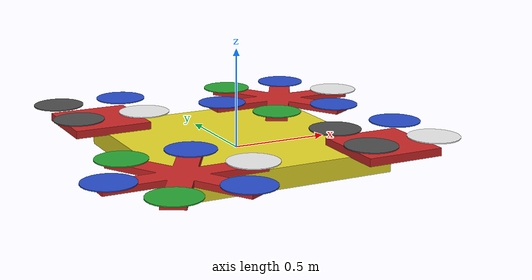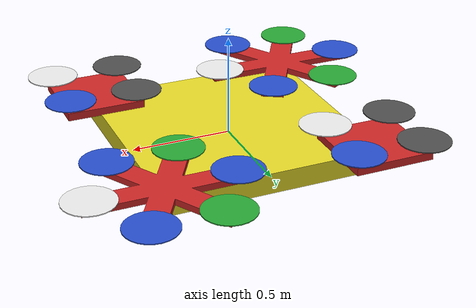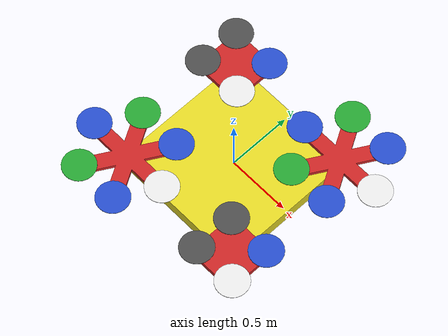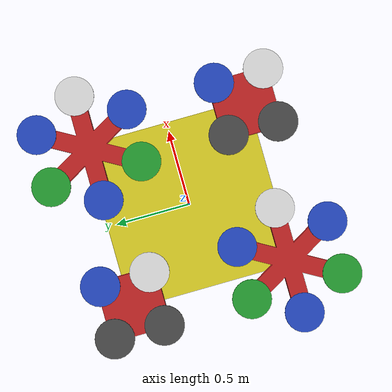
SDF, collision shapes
<sdf version='1.6'>
  <model name='quad_fl_parent'>
    <link name='base_link'>
      <pose frame=''>0 0 0 0 -0 0</pose>
      <inertial>
        <pose frame=''>0 0 0 0 -0 0</pose>
        <mass>0.75</mass>
        <inertia>
          <ixx>0.06906</ixx>
          <ixy>0</ixy>
          <ixz>0</ixz>
          <iyy>0.06906</iyy>
          <iyz>0</iyz>
          <izz>0.136899</izz>
        </inertia>
      </inertial>
      <collision name='base_link_inertia_collision'>
        <pose frame=''>0 0 0 0 -0 0</pose>
        <geometry>
          <box>
            <size>1.11 1.11 0.105</size>
          </box>
        </geometry>
        <surface>
          <contact>
            <ode>
              <min_depth>0.001</min_depth>
              <max_vel>0</max_vel>
            </ode>
          </contact>
          <friction>
            <ode/>
          </friction>
        </surface>
      </collision>
      <visual name='base_link_inertia_visual'>
        <pose frame=''>0 0 0 -1.570795 -0 1.570795</pose>
        <geometry>
          <mesh>
            <scale>0.003165 0.003165 0.003165</scale>
            <uri>model://quad_fl_parent/meshes/body_parent_new.stl</uri>
          </mesh>
        </geometry>
        <material>
          <script>
            <name>Gazebo/Yellow</name>
            <uri>file://media/materials/scripts/gazebo.material</uri>
          </script>
        </material>
      </visual>
      <gravity>1</gravity>
      <velocity_decay/>
    </link>

    <link name='/imu_link'>
      <pose frame=''>0 0 0 0 -0 0</pose>
      <inertial>
          <pose frame=''>0 0 0 0 -0 0</pose>
          <mass>0.015</mass>
          <inertia>
              <ixx>1e-05</ixx>
              <ixy>0</ixy>
              <ixz>0</ixz>
              <iyy>1e-05</iyy>
              <iyz>0</iyz>
              <izz>1e-05</izz>
          </inertia>
      </inertial>
    </link>
    <joint name='/imu_joint' type='revolute'>
      <child>/imu_link</child>
      <parent>base_link</parent>
      <axis>
          <xyz>1 0 0</xyz>
          <limit>
              <lower>0</lower>
              <upper>0</upper>
              <effort>0</effort>
              <velocity>0</velocity>
          </limit>
          <dynamics>
              <spring_reference>0</spring_reference>
              <spring_stiffness>0</spring_stiffness>
          </dynamics>
          <use_parent_model_frame>1</use_parent_model_frame>
      </axis>
    </joint>

    <static>0</static>

     <include>
      <uri>model://hex_fl_rr</uri>
      <pose frame=''>-0.525 -0.525 0.07 0 -0 0</pose>
    </include>
    <joint name="hex_fl_rr_link" type="fixed">
      <parent>base_link</parent>
      <child>hex_fl_rr::base_link</child>
    </joint>

    <include>
      <uri>model://quad_fl_rl</uri>
      <pose frame=''>-0.525 0.525 0.07 0 -0 0</pose>
    </include>
    <joint name="quad_fl_rl_link" type="fixed">
      <parent>base_link</parent>
      <child>quad_fl_rl::base_link</child>
    </joint>

    <include>
      <uri>model://quad_fl_fr</uri>
      <pose frame=''>0.525 -0.525 0.07 0 -0 0</pose>
    </include>
    <joint name="quad_fl_fr_link" type="fixed">
      <parent>base_link</parent>
      <child>quad_fl_fr::base_link</child>
    </joint>

    <include>
      <uri>model://hex_fl_fl</uri>
      <pose frame=''>0.525 0.525 0.07 0 -0 0</pose>
    </include>
    <joint name="hex_fl_fl_link" type="fixed">
      <parent>base_link</parent>
      <child>hex_fl_fl::base_link</child>
    </joint>

    <plugin name='gps_plugin' filename='libgazebo_gps_plugin.so'>
      <robotNamespace>quad_fl_parent</robotNamespace>
      <gpsNoise>1</gpsNoise>
    </plugin>
    <plugin name='magnetometer_plugin' filename='libgazebo_magnetometer_plugin.so'>
      <robotNamespace>quad_fl_parent</robotNamespace>
      <pubRate>20</pubRate>
      <noiseDensity>0.0004</noiseDensity>
      <randomWalk>6.4e-06</randomWalk>
      <biasCorrelationTime>600</biasCorrelationTime>
      <magTopic>/mag</magTopic>
    </plugin>
    <plugin name='barometer_plugin' filename='libgazebo_barometer_plugin.so'>
      <robotNamespace>quad_fl_parent</robotNamespace>
      <pubRate>10</pubRate>
      <baroTopic>/baro</baroTopic>
    </plugin>
    <plugin name='mavlink_interface' filename='libgazebo_mavlink_interface.so'>
      <robotNamespace>quad_fl_parent</robotNamespace>
      <imuSubTopic>/imu</imuSubTopic>
      <gpsSubTopic>/gps</gpsSubTopic>
      <magSubTopic>/mag</magSubTopic>
      <baroSubTopic>/baro</baroSubTopic>
      <mavlink_addr>INADDR_ANY</mavlink_addr>
      <mavlink_udp_port>14071</mavlink_udp_port>
      <mavlink_tcp_port>4571</mavlink_tcp_port>
      <serialEnabled>0</serialEnabled>
      <serialDevice>/dev/ttyACM0</serialDevice>
      <baudRate>921600</baudRate>
      <qgc_addr>INADDR_ANY</qgc_addr>
      <qgc_udp_port>14561</qgc_udp_port>
      <sdk_addr>INADDR_ANY</sdk_addr>
      <sdk_udp_port>13661</sdk_udp_port>
      <hil_mode>0</hil_mode>
      <hil_state_level>0</hil_state_level>
      <vehicle_is_tailsitter>0</vehicle_is_tailsitter>
      <send_vision_estimation>1</send_vision_estimation>
      <send_odometry>0</send_odometry>
      <enable_lockstep>1</enable_lockstep>
      <use_tcp>1</use_tcp>
      <motorSpeedCommandPubTopic>/gazebo/command/motor_speed</motorSpeedCommandPubTopic>
      <control_channels>
        <channel name='rotor1'>
          <input_index>0</input_index>
          <input_offset>0</input_offset>
          <input_scaling>1000</input_scaling>
          <zero_position_disarmed>0</zero_position_disarmed>
          <zero_position_armed>100</zero_position_armed>
          <joint_control_type>velocity</joint_control_type>
        </channel>
        <channel name='rotor2'>
          <input_index>1</input_index>
          <input_offset>0</input_offset>
          <input_scaling>1000</input_scaling>
          <zero_position_disarmed>0</zero_position_disarmed>
          <zero_position_armed>100</zero_position_armed>
          <joint_control_type>velocity</joint_control_type>
        </channel>
        <channel name='rotor3'>
          <input_index>2</input_index>
          <input_offset>0</input_offset>
          <input_scaling>1000</input_scaling>
          <zero_position_disarmed>0</zero_position_disarmed>
          <zero_position_armed>100</zero_position_armed>
          <joint_control_type>velocity</joint_control_type>
        </channel>
        <channel name='rotor4'>
          <input_index>3</input_index>
          <input_offset>0</input_offset>
          <input_scaling>1000</input_scaling>
          <zero_position_disarmed>0</zero_position_disarmed>
          <zero_position_armed>100</zero_position_armed>
          <joint_control_type>velocity</joint_control_type>
        </channel>
      </control_channels>
    </plugin>
    <static>0</static>
    <plugin name='rotors_gazebo_imu_plugin' filename='libgazebo_imu_plugin.so'>
      <robotNamespace>quad_fl_parent</robotNamespace>
      <linkName>/imu_link</linkName>
      <imuTopic>/imu</imuTopic>
      <gyroscopeNoiseDensity>0.0003394</gyroscopeNoiseDensity>
      <gyroscopeRandomWalk>3.8785e-05</gyroscopeRandomWalk>
      <gyroscopeBiasCorrelationTime>1000.0</gyroscopeBiasCorrelationTime>
      <gyroscopeTurnOnBiasSigma>0.0087</gyroscopeTurnOnBiasSigma>
      <accelerometerNoiseDensity>0.004</accelerometerNoiseDensity>
      <accelerometerRandomWalk>0.006</accelerometerRandomWalk>
      <accelerometerBiasCorrelationTime>300.0</accelerometerBiasCorrelationTime>
      <accelerometerTurnOnBiasSigma>0.196</accelerometerTurnOnBiasSigma>
    </plugin>

  </model>

</sdf>

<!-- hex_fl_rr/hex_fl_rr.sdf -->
<sdf version='1.6'>
  <model name='hex_fl_rr'>
    <link name='base_link'>
      <pose frame=''>0 0 0 0 -0 0</pose>
      <inertial>
        <pose frame=''>0 0 0 0 -0 0</pose>
        <mass>2.0</mass>
        <inertia>
          <ixx>0.0818</ixx>
          <ixy>0</ixy>
          <ixz>0</ixz>
          <iyy>0.0818</iyy>
          <iyz>0</iyz>
          <izz>0.1633</izz>
        </inertia>
      </inertial>
      <collision name='base_link_inertia_collision'>
        <pose frame=''>0 0 0.015 -1.570795 -0 1.570795</pose>
        <geometry>
          <mesh>
            <scale>0.001055 0.001055 0.001055</scale>
            <uri>model://hex_fl_rr/meshes/hex_collision.stl</uri>
          </mesh>
        </geometry>
        <surface>
          <contact>
            <ode>
              <min_depth>0.001</min_depth>
              <max_vel>0</max_vel>
            </ode>
          </contact>
          <friction>
            <ode/>
          </friction>
        </surface>
      </collision>
      <visual name='base_link_inertia_visual'>
        <pose frame=''>0 0 0 -1.570795 -0 1.570795</pose>
        <geometry>
          <mesh>
            <scale>0.001055 0.001055 0.001055</scale>
            <uri>model://hex_fl_rr/meshes/hex_frame.stl</uri>
          </mesh>
        </geometry>
        <material>
          <script>
            <name>Gazebo/Red</name>
            <uri>file://media/materials/scripts/gazebo.material</uri>
          </script>
        </material>
      </visual>
      <gravity>1</gravity>
      <velocity_decay/>
    </link>
    <link name='/imu_link'>
      <pose frame=''>0 0 0 0 -0 0</pose>
      <inertial>
        <pose frame=''>0 0 0 0 -0 0</pose>
        <mass>0.015</mass>
        <inertia>
          <ixx>1e-05</ixx>
          <ixy>0</ixy>
          <ixz>0</ixz>
          <iyy>1e-05</iyy>
          <iyz>0</iyz>
          <izz>1e-05</izz>
        </inertia>
      </inertial>
    </link>
    <joint name='/imu_joint' type='revolute'>
      <child>/imu_link</child>
      <parent>base_link</parent>
      <axis>
        <xyz>1 0 0</xyz>
        <limit>
          <lower>0</lower>
          <upper>0</upper>
          <effort>0</effort>
          <velocity>0</velocity>
        </limit>
        <dynamics>
          <spring_reference>0</spring_reference>
          <spring_stiffness>0</spring_stiffness>
        </dynamics>
        <use_parent_model_frame>1</use_parent_model_frame>
      </axis>
    </joint>

    <link name='rotor_3'>
      <pose frame=''>0.175 -0.30311 0.022 0 -0 0</pose>
      <inertial>
        <pose frame=''>0 0 0 0 -0 0</pose>
        <mass>0.005</mass>
        <inertia>
          <ixx>9.75e-07</ixx>
          <ixy>0</ixy>
          <ixz>0</ixz>
          <iyy>0.000273104</iyy>
          <iyz>0</iyz>
          <izz>0.000274004</izz>
        </inertia>
      </inertial>
      <collision name='rotor_3_collision'>
        <pose frame=''>0 0 0 0 -0 0</pose>
        <geometry>
          <cylinder>
            <length>0.005</length>
            <radius>0.128</radius>
          </cylinder>
        </geometry>
        <surface>
          <contact>
            <ode/>
          </contact>
          <friction>
            <ode/>
          </friction>
        </surface>
      </collision>
      <visual name='rotor_3_visual'>
        <pose frame=''>0 0 0 0 -0 0</pose>
        <geometry>
          <mesh>
            <scale>1 1 1</scale>
            <uri>model://rotors_description/meshes/iris_prop_ccw.dae</uri>
          </mesh>
        </geometry>
        <material>
          <script>
            <name>Gazebo/Blue</name>
            <uri>file://media/materials/scripts/gazebo.material</uri>
          </script>
        </material>
      </visual>
      <gravity>1</gravity>
      <velocity_decay/>
    </link>
    <joint name='rotor_3_joint' type='revolute'>
      <child>rotor_3</child>
      <parent>base_link</parent>
      <axis>
        <xyz>0 0 1</xyz>
        <limit>
          <lower>-1e+16</lower>
          <upper>1e+16</upper>
        </limit>
        <dynamics>
          <spring_reference>0</spring_reference>
          <spring_stiffness>0</spring_stiffness>
        </dynamics>
        <use_parent_model_frame>1</use_parent_model_frame>
      </axis>
    </joint>
    <link name='rotor_4'>
      <pose frame=''>0.175 0.30311 0.022 0 -0 0</pose>
      <inertial>
        <pose frame=''>0 0 0 0 -0 0</pose>
        <mass>0.005</mass>
        <inertia>
          <ixx>9.75e-07</ixx>
          <ixy>0</ixy>
          <ixz>0</ixz>
          <iyy>0.000273104</iyy>
          <iyz>0</iyz>
          <izz>0.000274004</izz>
        </inertia>
      </inertial>
      <collision name='rotor_4_collision'>
        <pose frame=''>0 0 0 0 -0 0</pose>
        <geometry>
          <cylinder>
            <length>0.005</length>
            <radius>0.128</radius>
          </cylinder>
        </geometry>
        <surface>
          <contact>
            <ode/>
          </contact>
          <friction>
            <ode/>
          </friction>
        </surface>
      </collision>
      <visual name='rotor_4_visual'>
        <pose frame=''>0 0 0 0 -0 0</pose>
        <geometry>
          <mesh>
            <scale>1 1 1</scale>
            <uri>model://rotors_description/meshes/iris_prop_ccw.dae</uri>
          </mesh>
        </geometry>
        <material>
          <script>
            <name>Gazebo/Blue</name>
            <uri>file://media/materials/scripts/gazebo.material</uri>
          </script>
        </material>
      </visual>
      <gravity>1</gravity>
      <velocity_decay/>
    </link>
    <joint name='rotor_4_joint' type='revolute'>
      <child>rotor_4</child>
      <parent>base_link</parent>
      <axis>
        <xyz>0 0 1</xyz>
        <limit>
          <lower>-1e+16</lower>
          <upper>1e+16</upper>
        </limit>
        <dynamics>
          <spring_reference>0</spring_reference>
          <spring_stiffness>0</spring_stiffness>
        </dynamics>
        <use_parent_model_frame>1</use_parent_model_frame>
      </axis>
    </joint>
    <link name='rotor_1'>
      <pose frame=''>-0.35 0 0.022 0 -0 0</pose>
      <inertial>
        <pose frame=''>0 0 0 0 -0 0</pose>
        <mass>0.005</mass>
        <inertia>
          <ixx>9.75e-07</ixx>
          <ixy>0</ixy>
          <ixz>0</ixz>
          <iyy>0.000273104</iyy>
          <iyz>0</iyz>
          <izz>0.000274004</izz>
        </inertia>
      </inertial>
      <collision name='rotor_1_collision'>
        <pose frame=''>0 0 0 0 -0 0</pose>
        <geometry>
          <cylinder>
            <length>0.005</length>
            <radius>0.128</radius>
          </cylinder>
        </geometry>
        <surface>
          <contact>
            <ode/>
          </contact>
          <friction>
            <ode/>
          </friction>
        </surface>
      </collision>
      <visual name='rotor_1_visual'>
        <pose frame=''>0 0 0 0 -0 0</pose>
        <geometry>
          <mesh>
            <scale>1 1 1</scale>
            <uri>model://rotors_description/meshes/iris_prop_ccw.dae</uri>
          </mesh>
        </geometry>
        <material>
          <script>
            <name>Gazebo/Blue</name>
            <uri>file://media/materials/scripts/gazebo.material</uri>
          </script>
        </material>
      </visual>
      <gravity>1</gravity>
      <velocity_decay/>
    </link>
    <joint name='rotor_1_joint' type='revolute'>
      <child>rotor_1</child>
      <parent>base_link</parent>
      <axis>
        <xyz>0 0 1</xyz>
        <limit>
          <lower>-1e+16</lower>
          <upper>1e+16</upper>
        </limit>
        <dynamics>
          <spring_reference>0</spring_reference>
          <spring_stiffness>0</spring_stiffness>
        </dynamics>
        <use_parent_model_frame>1</use_parent_model_frame>
      </axis>
    </joint>
    <link name='rotor_5'>
      <pose frame=''>-0.175 -0.30311 0.022 0 -0 0</pose>
      <inertial>
        <pose frame=''>0 0 0 0 -0 0</pose>
        <mass>0.005</mass>
        <inertia>
          <ixx>9.75e-07</ixx>
          <ixy>0</ixy>
          <ixz>0</ixz>
          <iyy>0.000273104</iyy>
          <iyz>0</iyz>
          <izz>0.000274004</izz>
        </inertia>
      </inertial>
      <collision name='rotor_5_collision'>
        <pose frame=''>0 0 0 0 -0 0</pose>
        <geometry>
          <cylinder>
            <length>0.005</length>
            <radius>0.128</radius>
          </cylinder>
        </geometry>
        <surface>
          <contact>
            <ode/>
          </contact>
          <friction>
            <ode/>
          </friction>
        </surface>
      </collision>
      <visual name='rotor_5_visual'>
        <pose frame=''>0 0 0 0 -0 0</pose>
        <geometry>
          <mesh>
            <scale>1 1 1</scale>
            <uri>model://rotors_description/meshes/iris_prop_cw.dae</uri>
          </mesh>
        </geometry>
        <material>
          <script>
            <name>Gazebo/Green</name>
            <uri>file://media/materials/scripts/gazebo.material</uri>
          </script>
        </material>
      </visual>
      <gravity>1</gravity>
      <velocity_decay/>
    </link>
    <joint name='rotor_5_joint' type='revolute'>
      <child>rotor_5</child>
      <parent>base_link</parent>
      <axis>
        <xyz>0 0 1</xyz>
        <limit>
          <lower>-1e+16</lower>
          <upper>1e+16</upper>
        </limit>
        <dynamics>
          <spring_reference>0</spring_reference>
          <spring_stiffness>0</spring_stiffness>
        </dynamics>
        <use_parent_model_frame>1</use_parent_model_frame>
      </axis>
    </joint>
    <link name='rotor_2'>
      <pose frame=''>-0.175 0.30311 0.022 0 -0 0</pose>
      <inertial>
        <pose frame=''>0 0 0 0 -0 0</pose>
        <mass>0.005</mass>
        <inertia>
          <ixx>9.75e-07</ixx>
          <ixy>0</ixy>
          <ixz>0</ixz>
          <iyy>0.000273104</iyy>
          <iyz>0</iyz>
          <izz>0.000274004</izz>
        </inertia>
      </inertial>
      <collision name='rotor_2_collision'>
        <pose frame=''>0 0 0 0 -0 0</pose>
        <geometry>
          <cylinder>
            <length>0.005</length>
            <radius>0.128</radius>
          </cylinder>
        </geometry>
        <surface>
          <contact>
            <ode/>
          </contact>
          <friction>
            <ode/>
          </friction>
        </surface>
      </collision>
      <visual name='rotor_2_visual'>
        <pose frame=''>0 0 0 0 -0 0</pose>
        <geometry>
          <mesh>
            <scale>1 1 1</scale>
            <uri>model://rotors_description/meshes/iris_prop_cw.dae</uri>
          </mesh>
        </geometry>
        <material>
          <script>
            <name>Gazebo/Green</name>
            <uri>file://media/materials/scripts/gazebo.material</uri>
          </script>
        </material>
      </visual>
      <gravity>1</gravity>
      <velocity_decay/>
    </link>
    <joint name='rotor_2_joint' type='revolute'>
      <child>rotor_2</child>
      <parent>base_link</parent>
      <axis>
        <xyz>0 0 1</xyz>
        <limit>
          <lower>-1e+16</lower>
          <upper>1e+16</upper>
        </limit>
        <dynamics>
          <spring_reference>0</spring_reference>
          <spring_stiffness>0</spring_stiffness>
        </dynamics>
        <use_parent_model_frame>1</use_parent_model_frame>
      </axis>
    </joint>
    <link name='rotor_0'>
      <pose frame=''>0.35 0 0.022 0 -0 0</pose>
      <inertial>
        <pose frame=''>0 0 0 0 -0 0</pose>
        <mass>0.005</mass>
        <inertia>
          <ixx>9.75e-07</ixx>
          <ixy>0</ixy>
          <ixz>0</ixz>
          <iyy>0.000273104</iyy>
          <iyz>0</iyz>
          <izz>0.000274004</izz>
        </inertia>
      </inertial>
      <collision name='rotor_0_collision'>
        <pose frame=''>0 0 0 0 -0 0</pose>
        <geometry>
          <cylinder>
            <length>0.005</length>
            <radius>0.128</radius>
          </cylinder>
        </geometry>
        <surface>
          <contact>
            <ode/>
          </contact>
          <friction>
            <ode/>
          </friction>
        </surface>
      </collision>
      <visual name='rotor_0_visual'>
        <pose frame=''>0 0 0 0 -0 0</pose>
        <geometry>
          <mesh>
            <scale>1 1 1</scale>
            <uri>model://rotors_description/meshes/iris_prop_cw.dae</uri>
          </mesh>
        </geometry>
        <material>
          <script>
            <name>Gazebo/White</name>
            <uri>file://media/materials/scripts/gazebo.material</uri>
          </script>
        </material>
      </visual>
      <gravity>1</gravity>
      <velocity_decay/>
    </link>
    <joint name='rotor_0_joint' type='revolute'>
      <child>rotor_0</child>
      <parent>base_link</parent>
      <axis>
        <xyz>0 0 1</xyz>
        <limit>
          <lower>-1e+16</lower>
          <upper>1e+16</upper>
        </limit>
        <dynamics>
          <spring_reference>0</spring_reference>
          <spring_stiffness>0</spring_stiffness>
        </dynamics>
        <use_parent_model_frame>1</use_parent_model_frame>
      </axis>
    </joint>

    <plugin name='rosbag' filename='libgazebo_multirotor_base_plugin.so'>
      <robotNamespace>hex_fl_rr</robotNamespace>
      <linkName>base_link</linkName>
      <rotorVelocitySlowdownSim>10</rotorVelocitySlowdownSim>
    </plugin>
    <plugin name='front_motor_model' filename='libgazebo_motor_model.so'>
      <robotNamespace>hex_fl_rr</robotNamespace>
      <jointName>rotor_0_joint</jointName>
      <linkName>rotor_0</linkName>
      <turningDirection>cw</turningDirection>
      <timeConstantUp>0.0125</timeConstantUp>
      <timeConstantDown>0.025</timeConstantDown>
      <maxRotVelocity>1100</maxRotVelocity>
      <motorConstant>8.54858e-06</motorConstant>
      <momentConstant>0.06</momentConstant>
      <commandSubTopic>/gazebo/command/motor_speed</commandSubTopic>
      <motorNumber>0</motorNumber>
      <rotorDragCoefficient>0.000175</rotorDragCoefficient>
      <rollingMomentCoefficient>1e-06</rollingMomentCoefficient>
      <motorSpeedPubTopic>/motor_speed/0</motorSpeedPubTopic>
      <rotorVelocitySlowdownSim>10</rotorVelocitySlowdownSim>
    </plugin>
    <plugin name='back_motor_model' filename='libgazebo_motor_model.so'>
      <robotNamespace>hex_fl_rr</robotNamespace>
      <jointName>rotor_1_joint</jointName>
      <linkName>rotor_1</linkName>
      <turningDirection>ccw</turningDirection>
      <timeConstantUp>0.0125</timeConstantUp>
      <timeConstantDown>0.025</timeConstantDown>
      <maxRotVelocity>1100</maxRotVelocity>
      <motorConstant>8.54858e-06</motorConstant>
      <momentConstant>0.06</momentConstant>
      <commandSubTopic>/gazebo/command/motor_speed</commandSubTopic>
      <motorNumber>1</motorNumber>
      <rotorDragCoefficient>0.000175</rotorDragCoefficient>
      <rollingMomentCoefficient>1e-06</rollingMomentCoefficient>
      <motorSpeedPubTopic>/motor_speed/1</motorSpeedPubTopic>
      <rotorVelocitySlowdownSim>10</rotorVelocitySlowdownSim>
    </plugin>
    <plugin name='back_left_motor_model' filename='libgazebo_motor_model.so'>
      <robotNamespace>hex_fl_rr</robotNamespace>
      <jointName>rotor_2_joint</jointName>
      <linkName>rotor_2</linkName>
      <turningDirection>cw</turningDirection>
      <timeConstantUp>0.0125</timeConstantUp>
      <timeConstantDown>0.025</timeConstantDown>
      <maxRotVelocity>1100</maxRotVelocity>
      <motorConstant>8.54858e-06</motorConstant>
      <momentConstant>0.06</momentConstant>
      <commandSubTopic>/gazebo/command/motor_speed</commandSubTopic>
      <motorNumber>2</motorNumber>
      <rotorDragCoefficient>0.000175</rotorDragCoefficient>
      <rollingMomentCoefficient>1e-06</rollingMomentCoefficient>
      <motorSpeedPubTopic>/motor_speed/2</motorSpeedPubTopic>
      <rotorVelocitySlowdownSim>10</rotorVelocitySlowdownSim>
    </plugin>
    <plugin name='top_right_motor_model' filename='libgazebo_motor_model.so'>
      <robotNamespace>hex_fl_rr</robotNamespace>
      <jointName>rotor_3_joint</jointName>
      <linkName>rotor_3</linkName>
      <turningDirection>ccw</turningDirection>
      <timeConstantUp>0.0125</timeConstantUp>
      <timeConstantDown>0.025</timeConstantDown>
      <maxRotVelocity>1100</maxRotVelocity>
      <motorConstant>8.54858e-06</motorConstant>
      <momentConstant>0.06</momentConstant>
      <commandSubTopic>/gazebo/command/motor_speed</commandSubTopic>
      <motorNumber>3</motorNumber>
      <rotorDragCoefficient>0.000175</rotorDragCoefficient>
      <rollingMomentCoefficient>1e-06</rollingMomentCoefficient>
      <motorSpeedPubTopic>/motor_speed/3</motorSpeedPubTopic>
      <rotorVelocitySlowdownSim>10</rotorVelocitySlowdownSim>
    </plugin>
    <plugin name='top_left_motor_model' filename='libgazebo_motor_model.so'>
      <robotNamespace>hex_fl_rr</robotNamespace>
      <jointName>rotor_4_joint</jointName>
      <linkName>rotor_4</linkName>
      <turningDirection>ccw</turningDirection>
      <timeConstantUp>0.0125</timeConstantUp>
      <timeConstantDown>0.025</timeConstantDown>
      <maxRotVelocity>1100</maxRotVelocity>
      <motorConstant>8.54858e-06</motorConstant>
      <momentConstant>0.06</momentConstant>
      <commandSubTopic>/gazebo/command/motor_speed</commandSubTopic>
      <motorNumber>4</motorNumber>
      <rotorDragCoefficient>0.000175</rotorDragCoefficient>
      <rollingMomentCoefficient>1e-06</rollingMomentCoefficient>
      <motorSpeedPubTopic>/motor_speed/4</motorSpeedPubTopic>
      <rotorVelocitySlowdownSim>10</rotorVelocitySlowdownSim>
    </plugin>
    <plugin name='back_right_motor_model' filename='libgazebo_motor_model.so'>
      <robotNamespace>hex_fl_rr</robotNamespace>
      <jointName>rotor_5_joint</jointName>
      <linkName>rotor_5</linkName>
      <turningDirection>cw</turningDirection>
      <timeConstantUp>0.0125</timeConstantUp>
      <timeConstantDown>0.025</timeConstantDown>
      <maxRotVelocity>1100</maxRotVelocity>
      <motorConstant>8.54858e-06</motorConstant>
      <momentConstant>0.06</momentConstant>
      <commandSubTopic>/gazebo/command/motor_speed</commandSubTopic>
      <motorNumber>5</motorNumber>
      <rotorDragCoefficient>0.000175</rotorDragCoefficient>
      <rollingMomentCoefficient>1e-06</rollingMomentCoefficient>
      <motorSpeedPubTopic>/motor_speed/5</motorSpeedPubTopic>
      <rotorVelocitySlowdownSim>10</rotorVelocitySlowdownSim>
    </plugin>

    <plugin name='gps_plugin' filename='libgazebo_gps_plugin.so'>
      <robotNamespace>hex_fl_rr</robotNamespace>
      <gpsNoise>1</gpsNoise>
    </plugin>
    <plugin name='magnetometer_plugin' filename='libgazebo_magnetometer_plugin.so'>
      <robotNamespace>hex_fl_rr</robotNamespace>
      <pubRate>20</pubRate>
      <noiseDensity>0.0004</noiseDensity>
      <randomWalk>6.4e-06</randomWalk>
      <biasCorrelationTime>600</biasCorrelationTime>
      <magTopic>/mag</magTopic>
    </plugin>
    <plugin name='barometer_plugin' filename='libgazebo_barometer_plugin.so'>
      <robotNamespace>hex_fl_rr</robotNamespace>
      <pubRate>10</pubRate>
      <baroTopic>/baro</baroTopic>
    </plugin>
    <plugin name='mavlink_interface' filename='libgazebo_mavlink_interface.so'>
      <robotNamespace>hex_fl_rr</robotNamespace>
      <imuSubTopic>/imu</imuSubTopic>
      <gpsSubTopic>/gps</gpsSubTopic>
      <magSubTopic>/mag</magSubTopic>
      <baroSubTopic>/baro</baroSubTopic>
      <mavlink_addr>INADDR_ANY</mavlink_addr>
      <mavlink_udp_port>14075</mavlink_udp_port>
      <mavlink_tcp_port>4575</mavlink_tcp_port>
      <serialEnabled>0</serialEnabled>
      <serialDevice>/dev/ttyACM0</serialDevice>
      <baudRate>921600</baudRate>
      <qgc_addr>INADDR_ANY</qgc_addr>
      <qgc_udp_port>14565</qgc_udp_port>
      <sdk_addr>INADDR_ANY</sdk_addr>
      <sdk_udp_port>13665</sdk_udp_port>
      <hil_mode>0</hil_mode>
      <hil_state_level>0</hil_state_level>
      <vehicle_is_tailsitter>0</vehicle_is_tailsitter>
      <send_vision_estimation>1</send_vision_estimation>
      <send_odometry>0</send_odometry>
      <enable_lockstep>1</enable_lockstep>
      <use_tcp>1</use_tcp>
      <motorSpeedCommandPubTopic>/gazebo/command/motor_speed</motorSpeedCommandPubTopic>
      <control_channels>
        <channel name='rotor0'>
          <input_index>0</input_index>
          <input_offset>0</input_offset>
          <input_scaling>1000</input_scaling>
          <zero_position_disarmed>0</zero_position_disarmed>
          <zero_position_armed>100</zero_position_armed>
          <joint_control_type>velocity</joint_control_type>
        </channel>
        <channel name='rotor1'>
          <input_index>1</input_index>
          <input_offset>0</input_offset>
          <input_scaling>1000</input_scaling>
          <zero_position_disarmed>0</zero_position_disarmed>
          <zero_position_armed>100</zero_position_armed>
          <joint_control_type>velocity</joint_control_type>
        </channel>
        <channel name='rotor2'>
          <input_index>2</input_index>
          <input_offset>0</input_offset>
          <input_scaling>1000</input_scaling>
          <zero_position_disarmed>0</zero_position_disarmed>
          <zero_position_armed>100</zero_position_armed>
          <joint_control_type>velocity</joint_control_type>
        </channel>
        <channel name='rotor3'>
          <input_index>3</input_index>
          <input_offset>0</input_offset>
          <input_scaling>1000</input_scaling>
          <zero_position_disarmed>0</zero_position_disarmed>
          <zero_position_armed>100</zero_position_armed>
          <joint_control_type>velocity</joint_control_type>
        </channel>
        <channel name='rotor4'>
          <input_index>4</input_index>
          <input_offset>0</input_offset>
          <input_scaling>1000</input_scaling>
          <zero_position_disarmed>0</zero_position_disarmed>
          <zero_position_armed>100</zero_position_armed>
          <joint_control_type>velocity</joint_control_type>
        </channel>
        <channel name='rotor5'>
          <input_index>5</input_index>
          <input_offset>0</input_offset>
          <input_scaling>1000</input_scaling>
          <zero_position_disarmed>0</zero_position_disarmed>
          <zero_position_armed>100</zero_position_armed>
          <joint_control_type>velocity</joint_control_type>
        </channel>
      </control_channels>
    </plugin>
    <static>0</static>
    <plugin name='rotors_gazebo_imu_plugin' filename='libgazebo_imu_plugin.so'>
      <robotNamespace>hex_fl_rr</robotNamespace>
      <linkName>/imu_link</linkName>
      <imuTopic>/imu</imuTopic>
      <gyroscopeNoiseDensity>0.0003394</gyroscopeNoiseDensity>
      <gyroscopeRandomWalk>3.8785e-05</gyroscopeRandomWalk>
      <gyroscopeBiasCorrelationTime>1000.0</gyroscopeBiasCorrelationTime>
      <gyroscopeTurnOnBiasSigma>0.0087</gyroscopeTurnOnBiasSigma>
      <accelerometerNoiseDensity>0.004</accelerometerNoiseDensity>
      <accelerometerRandomWalk>0.006</accelerometerRandomWalk>
      <accelerometerBiasCorrelationTime>300.0</accelerometerBiasCorrelationTime>
      <accelerometerTurnOnBiasSigma>0.196</accelerometerTurnOnBiasSigma>
    </plugin>

  </model>
</sdf>

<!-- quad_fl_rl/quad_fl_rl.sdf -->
<sdf version='1.6'>
  <model name='quad_fl_rl'>
    <link name='base_link'>
      <pose frame=''>0 0 0 0 -0 0</pose>
      <inertial>
        <pose frame=''>0 0 0 0 -0 0</pose>
        <mass>1.0</mass>
        <inertia>
          <ixx>0.0134667</ixx>
          <ixy>0</ixy>
          <ixz>0</ixz>
          <iyy>0.0134667</iyy>
          <iyz>0</iyz>
          <izz>0.02667</izz>
        </inertia>
      </inertial>
      <collision name='base_link_inertia_collision'>
        <pose frame=''>0 0 0.00 0 -0 0</pose>
        <geometry>
          <box>
            <size>0.4 0.4 0.04</size>
          </box>
        </geometry>
        <surface>
          <contact>
            <ode>
              <min_depth>0.001</min_depth>
              <max_vel>0</max_vel>
            </ode>
          </contact>
          <friction>
            <ode/>
          </friction>
        </surface>
      </collision>
      <visual name='base_link_inertia_visual'>
        <pose frame=''>0 0 0 -1.570795 -0 1.570795</pose>
        <geometry>
          <mesh>
            <scale>0.001055 0.001055 0.001055</scale>
            <uri>model://quad_fl_rl/meshes/body.stl</uri>
          </mesh>
        </geometry>
        <material>
          <script>
            <name>Gazebo/Red</name>
            <uri>file://media/materials/scripts/gazebo.material</uri>
          </script>
        </material>
      </visual>
      <gravity>1</gravity>
      <velocity_decay/>
    </link>
    <link name='/imu_link'>
      <pose frame=''>0 0 0 0 -0 0</pose>
      <inertial>
        <pose frame=''>0 0 0 0 -0 0</pose>
        <mass>0.015</mass>
        <inertia>
          <ixx>1e-05</ixx>
          <ixy>0</ixy>
          <ixz>0</ixz>
          <iyy>1e-05</iyy>
          <iyz>0</iyz>
          <izz>1e-05</izz>
        </inertia>
      </inertial>
    </link>
    <joint name='/imu_joint' type='revolute'>
      <child>/imu_link</child>
      <parent>base_link</parent>
      <axis>
        <xyz>1 0 0</xyz>
        <limit>
          <lower>0</lower>
          <upper>0</upper>
          <effort>0</effort>
          <velocity>0</velocity>
        </limit>
        <dynamics>
          <spring_reference>0</spring_reference>
          <spring_stiffness>0</spring_stiffness>
        </dynamics>
        <use_parent_model_frame>1</use_parent_model_frame>
      </axis>
    </joint>
    <link name='rotor_0'>
      <pose frame=''>0.178 -0.163 0.07 0 -0 0</pose>
      <inertial>
        <pose frame=''>0 0 0 0 -0 0</pose>
        <mass>0.005</mass>
        <inertia>
          <ixx>9.75e-07</ixx>
          <ixy>0</ixy>
          <ixz>0</ixz>
          <iyy>0.000273104</iyy>
          <iyz>0</iyz>
          <izz>0.000274004</izz>
        </inertia>
      </inertial>
      <collision name='rotor_0_collision'>
        <pose frame=''>0 0 0 0 -0 0</pose>
        <geometry>
          <cylinder>
            <length>0.005</length>
            <radius>0.128</radius>
          </cylinder>
        </geometry>
        <surface>
          <contact>
            <ode/>
          </contact>
          <friction>
            <ode/>
          </friction>
        </surface>
      </collision>
      <visual name='rotor_0_visual'>
        <pose frame=''>0 0 0 0 -0 0</pose>
        <geometry>
          <mesh>
            <scale>1 1 1</scale>
            <uri>model://rotors_description/meshes/iris_prop_cw.dae</uri>
          </mesh>
        </geometry>
        <material>
          <script>
            <name>Gazebo/White</name>
            <uri>file://media/materials/scripts/gazebo.material</uri>
          </script>
        </material>
      </visual>
      <gravity>1</gravity>
      <velocity_decay/>
    </link>
    <joint name='rotor_0_joint' type='revolute'>
      <child>rotor_0</child>
      <parent>base_link</parent>
      <axis>
        <xyz>0 0 1</xyz>
        <limit>
          <lower>-1e+16</lower>
          <upper>1e+16</upper>
        </limit>
        <dynamics>
          <spring_reference>0</spring_reference>
          <spring_stiffness>0</spring_stiffness>
        </dynamics>
        <use_parent_model_frame>1</use_parent_model_frame>
      </axis>
    </joint>
    <link name='rotor_1'>
      <pose frame=''>-0.17 0.1635 0.07 0 -0 0</pose>
      <inertial>
        <pose frame=''>0 0 0 0 -0 0</pose>
        <mass>0.005</mass>
        <inertia>
          <ixx>9.75e-07</ixx>
          <ixy>0</ixy>
          <ixz>0</ixz>
          <iyy>0.000273104</iyy>
          <iyz>0</iyz>
          <izz>0.000274004</izz>
        </inertia>
      </inertial>
      <collision name='rotor_1_collision'>
        <pose frame=''>0 0 0 0 -0 0</pose>
        <geometry>
          <cylinder>
            <length>0.005</length>
            <radius>0.128</radius>
          </cylinder>
        </geometry>
        <surface>
          <contact>
            <ode/>
          </contact>
          <friction>
            <ode/>
          </friction>
        </surface>
      </collision>
      <visual name='rotor_1_visual'>
        <pose frame=''>0 0 0 0 -0 0</pose>
        <geometry>
          <mesh>
            <scale>1 1 1</scale>
            <uri>model://rotors_description/meshes/iris_prop_ccw.dae</uri>
          </mesh>
        </geometry>
        <material>
          <script>
            <name>Gazebo/DarkGrey</name>
            <uri>file://media/materials/scripts/gazebo.material</uri>
          </script>
        </material>
      </visual>
      <gravity>1</gravity>
      <velocity_decay/>
    </link>
    <joint name='rotor_1_joint' type='revolute'>
      <child>rotor_1</child>
      <parent>base_link</parent>
      <axis>
        <xyz>0 0 1</xyz>
        <limit>
          <lower>-1e+16</lower>
          <upper>1e+16</upper>
        </limit>
        <dynamics>
          <spring_reference>0</spring_reference>
          <spring_stiffness>0</spring_stiffness>
        </dynamics>
        <use_parent_model_frame>1</use_parent_model_frame>
      </axis>
    </joint>
    <link name='rotor_2'>
      <pose frame=''>0.175 0.163 0.07 0 -0 0</pose>
      <inertial>
        <pose frame=''>0 0 0 0 -0 0</pose>
        <mass>0.005</mass>
        <inertia>
          <ixx>9.75e-07</ixx>
          <ixy>0</ixy>
          <ixz>0</ixz>
          <iyy>0.000273104</iyy>
          <iyz>0</iyz>
          <izz>0.000274004</izz>
        </inertia>
      </inertial>
      <collision name='rotor_2_collision'>
        <pose frame=''>0 0 0 0 -0 0</pose>
        <geometry>
          <cylinder>
            <length>0.005</length>
            <radius>0.128</radius>
          </cylinder>
        </geometry>
        <surface>
          <contact>
            <ode/>
          </contact>
          <friction>
            <ode/>
          </friction>
        </surface>
      </collision>
      <visual name='rotor_2_visual'>
        <pose frame=''>0 0 0 0 -0 0</pose>
        <geometry>
          <mesh>
            <scale>1 1 1</scale>
            <uri>model://rotors_description/meshes/iris_prop_cw.dae</uri>
          </mesh>
        </geometry>
        <material>
          <script>
            <name>Gazebo/Blue</name>
            <uri>file://media/materials/scripts/gazebo.material</uri>
          </script>
        </material>
      </visual>
      <gravity>1</gravity>
      <velocity_decay/>
    </link>
    <joint name='rotor_2_joint' type='revolute'>
      <child>rotor_2</child>
      <parent>base_link</parent>
      <axis>
        <xyz>0 0 1</xyz>
        <limit>
          <lower>-1e+16</lower>
          <upper>1e+16</upper>
        </limit>
        <dynamics>
          <spring_reference>0</spring_reference>
          <spring_stiffness>0</spring_stiffness>
        </dynamics>
        <use_parent_model_frame>1</use_parent_model_frame>
      </axis>
    </joint>
    <link name='rotor_3'>
      <pose frame=''>-0.173 -0.1635 0.07 0 -0 0</pose>
      <inertial>
        <pose frame=''>0 0 0 0 -0 0</pose>
        <mass>0.005</mass>
        <inertia>
          <ixx>9.75e-07</ixx>
          <ixy>0</ixy>
          <ixz>0</ixz>
          <iyy>0.000273104</iyy>
          <iyz>0</iyz>
          <izz>0.000274004</izz>
        </inertia>
      </inertial>
      <collision name='rotor_3_collision'>
        <pose frame=''>0 0 0 0 -0 0</pose>
        <geometry>
          <cylinder>
            <length>0.005</length>
            <radius>0.128</radius>
          </cylinder>
        </geometry>
        <surface>
          <contact>
            <ode/>
          </contact>
          <friction>
            <ode/>
          </friction>
        </surface>
      </collision>
      <visual name='rotor_3_visual'>
        <pose frame=''>0 0 0 0 -0 0</pose>
        <geometry>
          <mesh>
            <scale>1 1 1</scale>
            <uri>model://rotors_description/meshes/iris_prop_ccw.dae</uri>
          </mesh>
        </geometry>
        <material>
          <script>
            <name>Gazebo/DarkGrey</name>
            <uri>file://media/materials/scripts/gazebo.material</uri>
          </script>
        </material>
      </visual>
      <gravity>1</gravity>
      <velocity_decay/>
    </link>
    <joint name='rotor_3_joint' type='revolute'>
      <child>rotor_3</child>
      <parent>base_link</parent>
      <axis>
        <xyz>0 0 1</xyz>
        <limit>
          <lower>-1e+16</lower>
          <upper>1e+16</upper>
        </limit>
        <dynamics>
          <spring_reference>0</spring_reference>
          <spring_stiffness>0</spring_stiffness>
        </dynamics>
        <use_parent_model_frame>1</use_parent_model_frame>
      </axis>
    </joint>

  <plugin name='rosbag' filename='libgazebo_multirotor_base_plugin.so'>
    <robotNamespace>quad_fl_rl</robotNamespace>
    <linkName>base_link</linkName>
      <rotorVelocitySlowdownSim>10</rotorVelocitySlowdownSim>
    </plugin>
    <plugin name='front_right_motor_model' filename='libgazebo_motor_model.so'>
      <robotNamespace>quad_fl_rl</robotNamespace>
      <jointName>rotor_0_joint</jointName>
      <linkName>rotor_0</linkName>
      <turningDirection>cw</turningDirection>
      <timeConstantUp>0.0125</timeConstantUp>
      <timeConstantDown>0.025</timeConstantDown>
      <maxRotVelocity>1100</maxRotVelocity>
      <motorConstant>8.54858e-06</motorConstant>
      <momentConstant>0.06</momentConstant>
      <commandSubTopic>/gazebo/command/motor_speed</commandSubTopic>
      <motorNumber>0</motorNumber>
      <rotorDragCoefficient>0.000175</rotorDragCoefficient>
      <rollingMomentCoefficient>1e-06</rollingMomentCoefficient>
      <motorSpeedPubTopic>/motor_speed/0</motorSpeedPubTopic>
      <rotorVelocitySlowdownSim>10</rotorVelocitySlowdownSim>
    </plugin>
    <plugin name='back_left_motor_model' filename='libgazebo_motor_model.so'>
      <robotNamespace>quad_fl_rl</robotNamespace>
      <jointName>rotor_1_joint</jointName>
      <linkName>rotor_1</linkName>
      <turningDirection>cw</turningDirection>
      <timeConstantUp>0.0125</timeConstantUp>
      <timeConstantDown>0.025</timeConstantDown>
      <maxRotVelocity>1100</maxRotVelocity>
      <motorConstant>8.54858e-06</motorConstant>
      <momentConstant>0.06</momentConstant>
      <commandSubTopic>/gazebo/command/motor_speed</commandSubTopic>
      <motorNumber>1</motorNumber>
      <rotorDragCoefficient>0.000175</rotorDragCoefficient>
      <rollingMomentCoefficient>1e-06</rollingMomentCoefficient>
      <motorSpeedPubTopic>/motor_speed/1</motorSpeedPubTopic>
      <rotorVelocitySlowdownSim>10</rotorVelocitySlowdownSim>
    </plugin>
    <plugin name='front_left_motor_model' filename='libgazebo_motor_model.so'>
      <robotNamespace>quad_fl_rl</robotNamespace>
      <jointName>rotor_2_joint</jointName>
      <linkName>rotor_2</linkName>
      <turningDirection>ccw</turningDirection>
      <timeConstantUp>0.0125</timeConstantUp>
      <timeConstantDown>0.025</timeConstantDown>
      <maxRotVelocity>1100</maxRotVelocity>
      <motorConstant>8.54858e-06</motorConstant>
      <momentConstant>0.06</momentConstant>
      <commandSubTopic>/gazebo/command/motor_speed</commandSubTopic>
      <motorNumber>2</motorNumber>
      <rotorDragCoefficient>0.000175</rotorDragCoefficient>
      <rollingMomentCoefficient>1e-06</rollingMomentCoefficient>
      <motorSpeedPubTopic>/motor_speed/2</motorSpeedPubTopic>
      <rotorVelocitySlowdownSim>10</rotorVelocitySlowdownSim>
    </plugin>
    <plugin name='back_right_motor_model' filename='libgazebo_motor_model.so'>
      <robotNamespace>quad_fl_rl</robotNamespace>
      <jointName>rotor_3_joint</jointName>
      <linkName>rotor_3</linkName>
      <turningDirection>ccw</turningDirection>
      <timeConstantUp>0.0125</timeConstantUp>
      <timeConstantDown>0.025</timeConstantDown>
      <maxRotVelocity>1100</maxRotVelocity>
      <motorConstant>8.54858e-06</motorConstant>
      <momentConstant>0.06</momentConstant>
      <commandSubTopic>/gazebo/command/motor_speed</commandSubTopic>
      <motorNumber>3</motorNumber>
      <rotorDragCoefficient>0.000175</rotorDragCoefficient>
      <rollingMomentCoefficient>1e-06</rollingMomentCoefficient>
      <motorSpeedPubTopic>/motor_speed/3</motorSpeedPubTopic>
      <rotorVelocitySlowdownSim>10</rotorVelocitySlowdownSim>
    </plugin>

    <plugin name='gps_plugin' filename='libgazebo_gps_plugin.so'>
      <robotNamespace>quad_fl_rl</robotNamespace>
      <gpsNoise>1</gpsNoise>
    </plugin>
    <plugin name='magnetometer_plugin' filename='libgazebo_magnetometer_plugin.so'>
      <robotNamespace>quad_fl_rl</robotNamespace>
      <pubRate>20</pubRate>
      <noiseDensity>0.0004</noiseDensity>
      <randomWalk>6.4e-06</randomWalk>
      <biasCorrelationTime>600</biasCorrelationTime>
      <magTopic>/mag</magTopic>
    </plugin>
    <plugin name='barometer_plugin' filename='libgazebo_barometer_plugin.so'>
      <robotNamespace>quad_fl_rl</robotNamespace>
      <pubRate>10</pubRate>
      <baroTopic>/baro</baroTopic>
    </plugin>
    <plugin name='mavlink_interface' filename='libgazebo_mavlink_interface.so'>
      <robotNamespace>quad_fl_rl</robotNamespace>
      <imuSubTopic>/imu</imuSubTopic>
      <gpsSubTopic>/gps</gpsSubTopic>
      <magSubTopic>/mag</magSubTopic>
      <baroSubTopic>/baro</baroSubTopic>
      <mavlink_addr>INADDR_ANY</mavlink_addr>
      <mavlink_udp_port>14073</mavlink_udp_port>
      <mavlink_tcp_port>4573</mavlink_tcp_port>
      <serialEnabled>0</serialEnabled>
      <serialDevice>/dev/ttyACM0</serialDevice>
      <baudRate>921600</baudRate>
      <qgc_addr>INADDR_ANY</qgc_addr>
      <qgc_udp_port>14563</qgc_udp_port>
      <sdk_addr>INADDR_ANY</sdk_addr>
      <sdk_udp_port>13663</sdk_udp_port>
      <hil_mode>0</hil_mode>
      <hil_state_level>0</hil_state_level>
      <vehicle_is_tailsitter>0</vehicle_is_tailsitter>
      <send_vision_estimation>1</send_vision_estimation>
      <send_odometry>0</send_odometry>
      <enable_lockstep>1</enable_lockstep>
      <use_tcp>1</use_tcp>
      <motorSpeedCommandPubTopic>/gazebo/command/motor_speed</motorSpeedCommandPubTopic>
      <control_channels>
        <channel name='rotor1'>
          <input_index>0</input_index>
          <input_offset>0</input_offset>
          <input_scaling>1000</input_scaling>
          <zero_position_disarmed>0</zero_position_disarmed>
          <zero_position_armed>100</zero_position_armed>
          <joint_control_type>velocity</joint_control_type>
        </channel>
        <channel name='rotor2'>
          <input_index>1</input_index>
          <input_offset>0</input_offset>
          <input_scaling>1000</input_scaling>
          <zero_position_disarmed>0</zero_position_disarmed>
          <zero_position_armed>100</zero_position_armed>
          <joint_control_type>velocity</joint_control_type>
        </channel>
        <channel name='rotor3'>
          <input_index>2</input_index>
          <input_offset>0</input_offset>
          <input_scaling>1000</input_scaling>
          <zero_position_disarmed>0</zero_position_disarmed>
          <zero_position_armed>100</zero_position_armed>
          <joint_control_type>velocity</joint_control_type>
        </channel>
        <channel name='rotor4'>
          <input_index>3</input_index>
          <input_offset>0</input_offset>
          <input_scaling>1000</input_scaling>
          <zero_position_disarmed>0</zero_position_disarmed>
          <zero_position_armed>100</zero_position_armed>
          <joint_control_type>velocity</joint_control_type>
        </channel>
        <channel name='rotor5'>
          <input_index>4</input_index>
          <input_offset>1</input_offset>
          <input_scaling>324.6</input_scaling>
          <zero_position_disarmed>0</zero_position_disarmed>
          <zero_position_armed>0</zero_position_armed>
          <joint_control_type>velocity</joint_control_type>
          <joint_control_pid>
            <p>0.1</p>
            <i>0</i>
            <d>0</d>
            <iMax>0.0</iMax>
            <iMin>0.0</iMin>
            <cmdMax>2</cmdMax>
            <cmdMin>-2</cmdMin>
          </joint_control_pid>
          <joint_name>zephyr_delta_wing::propeller_joint</joint_name>
        </channel>
        <channel name='rotor6'>
          <input_index>5</input_index>
          <input_offset>0</input_offset>
          <input_scaling>0.524</input_scaling>
          <zero_position_disarmed>0</zero_position_disarmed>
          <zero_position_armed>0</zero_position_armed>
          <joint_control_type>position</joint_control_type>
          <joint_name>zephyr_delta_wing::flap_left_joint</joint_name>
          <joint_control_pid>
            <p>10.0</p>
            <i>0</i>
            <d>0</d>
            <iMax>0</iMax>
            <iMin>0</iMin>
            <cmdMax>20</cmdMax>
            <cmdMin>-20</cmdMin>
          </joint_control_pid>
        </channel>
        <channel name='rotor7'>
          <input_index>6</input_index>
          <input_offset>0</input_offset>
          <input_scaling>0.524</input_scaling>
          <zero_position_disarmed>0</zero_position_disarmed>
          <zero_position_armed>0</zero_position_armed>
          <joint_control_type>position</joint_control_type>
          <joint_name>zephyr_delta_wing::flap_right_joint</joint_name>
          <joint_control_pid>
            <p>10.0</p>
            <i>0</i>
            <d>0</d>
            <iMax>0</iMax>
            <iMin>0</iMin>
            <cmdMax>20</cmdMax>
            <cmdMin>-20</cmdMin>
          </joint_control_pid>
        </channel>
        <channel name='rotor8'>
          <input_index>7</input_index>
          <input_offset>0</input_offset>
          <input_scaling>0.524</input_scaling>
          <zero_position_disarmed>0</zero_position_disarmed>
          <zero_position_armed>0</zero_position_armed>
          <joint_control_type>position</joint_control_type>
        </channel>
      </control_channels>
    </plugin>
    <static>0</static>
    <plugin name='rotors_gazebo_imu_plugin' filename='libgazebo_imu_plugin.so'>
      <robotNamespace>quad_fl_rl</robotNamespace>
      <linkName>/imu_link</linkName>
      <imuTopic>/imu</imuTopic>
      <gyroscopeNoiseDensity>0.0003394</gyroscopeNoiseDensity>
      <gyroscopeRandomWalk>3.8785e-05</gyroscopeRandomWalk>
      <gyroscopeBiasCorrelationTime>1000.0</gyroscopeBiasCorrelationTime>
      <gyroscopeTurnOnBiasSigma>0.0087</gyroscopeTurnOnBiasSigma>
      <accelerometerNoiseDensity>0.004</accelerometerNoiseDensity>
      <accelerometerRandomWalk>0.006</accelerometerRandomWalk>
      <accelerometerBiasCorrelationTime>300.0</accelerometerBiasCorrelationTime>
      <accelerometerTurnOnBiasSigma>0.196</accelerometerTurnOnBiasSigma>
    </plugin>

  </model>
</sdf>
